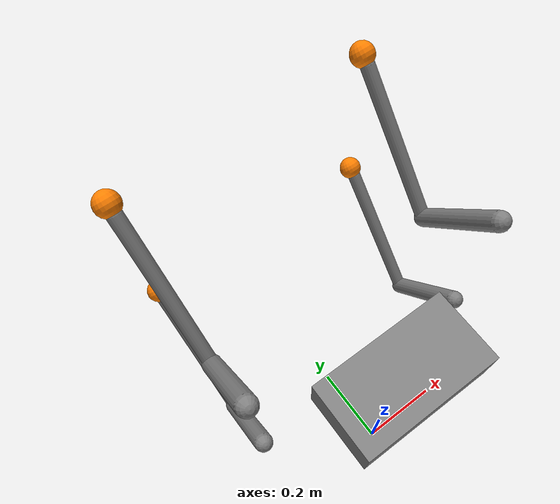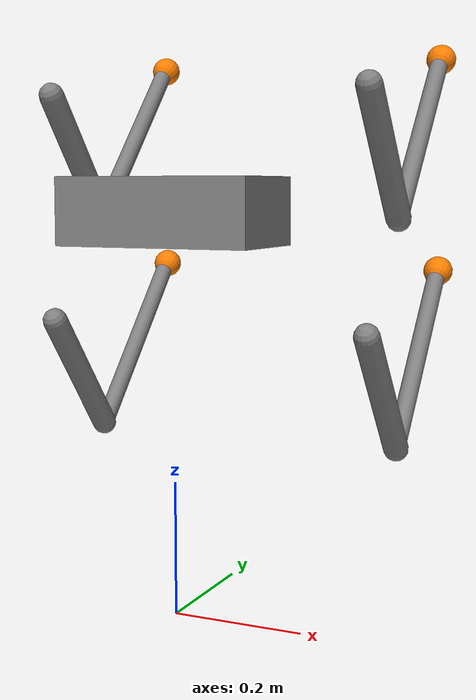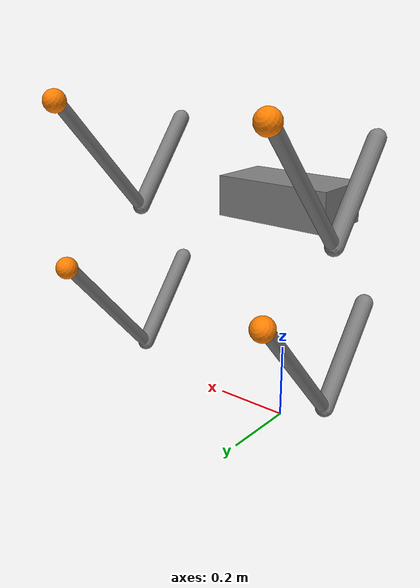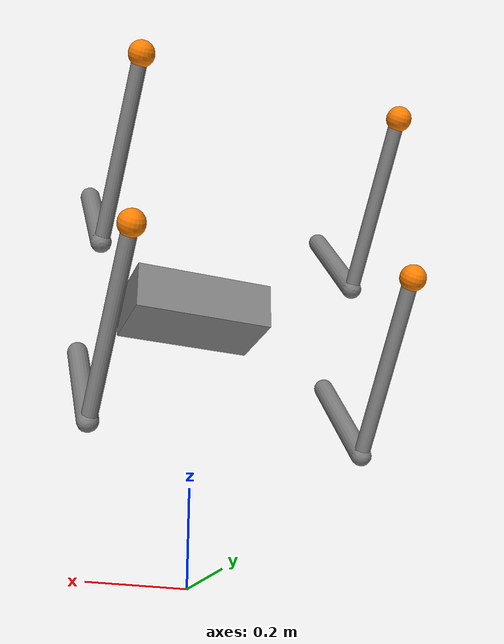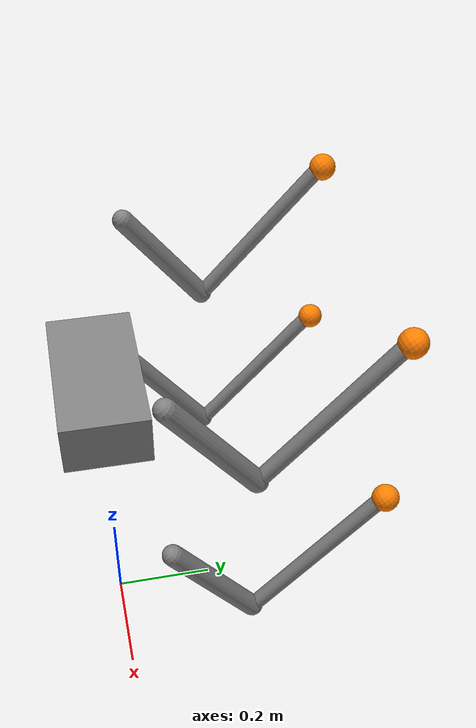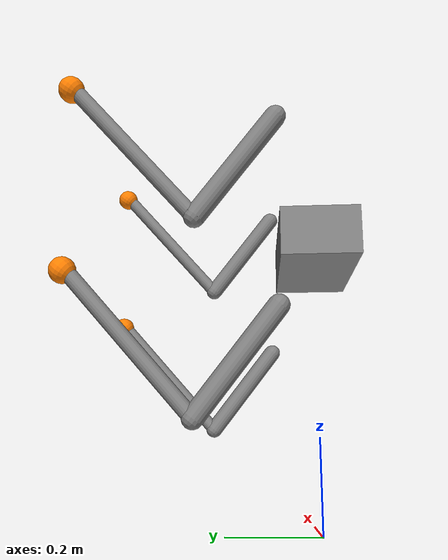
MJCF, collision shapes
<mujoco model="kutta">
  <compiler angle="radian" meshdir="meshes/" autolimits="true" eulerseq="xyz"/>

  <option iterations="1" ls_iterations="5" timestep="0.004" integrator="Euler">
    <flag eulerdamp="disable"/>
  </option>

  <default>
    <default class="kutta">
      <!-- This globally disables collisions for all parts except feet -->
      <geom condim="3" contype="0" conaffinity="0"/>
      <joint axis="0 0 1" armature="0.005" damping="0.5"/>
      <position forcerange="-1000 1000" inheritrange="1" kp="150"/>
      <default class="thigh">
        <joint range="-0.9 0.67" frictionloss="0.3"/>
      </default>
      <default class="calf">
        <joint range="-0.5 0.5" frictionloss="1.0"/>
        <position forcerange="-1000 1000"/>
      </default>
      <default class="visual">
        <geom type="mesh" contype="0" conaffinity="0" group="2" material="dark"/>
      </default>
      <default class="collision">
        <!-- These are disabled collision geometries (contype=0, conaffinity=0) -->
        <geom group="3" type="capsule" contype="0" conaffinity="0"/>
        <default class="trunk">
          <geom size="0.15 0.08 0.05" type="box" contype="0" conaffinity="0"/>
        </default>
        <default class="thigh_col_right">
          <geom size="0.02" fromto="0 0 0.055 0 0.245 0.055" type="capsule" contype="1" conaffinity="1" />
        </default>
        <default class="thigh_col_left">
          <geom size="0.02" fromto="0 0 -0.055 0 0.245 -0.055" type="capsule" contype="1" conaffinity="1" />
        </default>
        <default class="calf_col">
          <geom size="0.015" fromto="0 0 0 0 -0.065 0.33" type="capsule" contype="1" conaffinity="1" />
        </default>
        <default class="foot">
          <geom type="sphere" size="0.025" pos="0 -0.065 0.35" solimp="0.9 0.95 0.001" solref="0.004 1" contype="1" conaffinity="1" condim="3" friction="5 0.1 0.01" rgba="1 0.5 0 1" group="0"/>
        </default>
      </default>
    </default>
  </default>

  <asset>
    <material name="dark" rgba="0.2 0.2 0.2 1"/>
    <material name="light" rgba="0.776471 0.756863 0.737255 1"/>
    <material name="blue" rgba="0.792157 0.819608 0.933333 1"/>
    <mesh name="base_link" content_type="model/stl" file="base_link.STL"/>
    <mesh name="left_thigh" content_type="model/stl" file="FL_thigh.STL"/>
    <mesh name="left_calf" content_type="model/stl" file="FL_calf.STL"/>
    <mesh name="right_thigh" content_type="model/stl" file="FR_thigh.STL"/>
    <mesh name="right_calf" content_type="model/stl" file="FR_calf.STL"/>
  </asset>

  <worldbody>
    <body name="trunk" pos="0 0 0.6" quat="1 0 0 0" childclass="kutta">
      <camera name="track" pos="0.846 -1.3 0.316" xyaxes="0.866 0.500 0.000 -0.171 0.296 0.940" mode="trackcom"/>
      <camera name="top" pos="-1 0 1" xyaxes="0 -1 0 0.7 0 0.7" mode="trackcom"/>
      <camera name="side" pos="0 -1 .3" xyaxes="1 0 0 0 1 2" mode="trackcom"/>
      <camera name="back" pos="-1 0 .3" xyaxes="0 -1 0 1 0 2" mode="trackcom"/>
      <site name="head" pos="0.3 0 0" rgba="1 0 0 1" size="0.02" group="5"/>
      <inertial pos="0 0 0" mass="20.0" diaginertia="0.1 0.1 0.05"/>
      <freejoint/>

      <!-- Visual mesh for trunk with rotation to correct mesh orientation -->
      <geom class="visual" mesh="base_link" material="blue" />
      <!-- Collision geometry for trunk -->
      <geom class="trunk"/>

      <site name="imu" pos="0 0 0" group="5"/>

      <!-- Front Left Leg -->
      <body name="FL_thigh" pos="0.21 0.09 -0.18" quat="0.63 -0.31 -0.63 0.31"> <!--quat="0.525 -0.425 -0.525 0.425"> -->
        <inertial pos="-0.0008 0.03 -0.05" quat="0.4 0.4 -0.6 0.6" mass="1.55" diaginertia="0.00262 0.00260 0.00123"/>
        <joint class="thigh" name="FL_thigh_joint"/>
        <geom class="visual" mesh="left_thigh" material="light" />
        <geom class="thigh_col_left"/>
        <body name="FL_calf" pos="0 0.245452 -0.0544472" quat="0.707107 0 0.707107 0">
          <inertial pos="0.0 -0.033 0.166" quat="0.704 0.068 -0.068 0.704" mass="0.25" diaginertia="0.00085 0.00085 0.000017"/>
          <joint class="calf" name="FL_calf_joint" axis="-1 0 0"/>
          <geom class="visual" mesh="left_calf" material="blue" />
          <geom class="calf_col"/>
          <geom name="FL" class="foot"/>
          <site name="FL" pos="0 -0.33 0" type="sphere" size="0.03" group="5"/>
        </body>
      </body>

      <!-- Front Right Leg -->
      <body name="FR_thigh" pos="-0.21 0.09 -0.18" quat="0.63 -0.31 -0.63 0.31">
        <inertial pos="-0.0008 0.03 -0.05" quat="0.4 0.4 -0.6 0.6" mass="1.55" diaginertia="0.00262 0.00260 0.00123"/>
        <joint class="thigh" name="FR_thigh_joint"/>
        <geom class="visual" mesh="right_thigh" material="light" />
        <geom class="thigh_col_right"/>
        <body name="FR_calf" pos="0 0.245452 0.0544472" quat="0.707107 0 0.707107 0">
          <inertial pos="0.0 -0.033 0.166" quat="0.704 0.068 -0.068 0.704" mass="0.25" diaginertia="0.00085 0.00085 0.000017"/>
          <joint class="calf" name="FR_calf_joint" axis="-1 0 0"/>
          <geom class="visual" mesh="right_calf" material="blue" />
          <geom class="calf_col"/>
          <geom name="FR" class="foot"/>
          <site name="FR" pos="0 -0.33 0" type="sphere" size="0.025" group="5"/>
        </body>
      </body>

      <!-- Rear Left Leg -->
      <body name="RL_thigh" pos="0.21 0.09 0.18" quat="0.63 -0.31 -0.63 0.31">
        <inertial pos="-0.0008 0.03 -0.05" quat="0.4 0.4 -0.6 0.6" mass="1.55" diaginertia="0.00262 0.00260 0.00123"/>
        <joint class="thigh" name="RL_thigh_joint"/>
        <geom class="visual" mesh="left_thigh" material="light" />
        <geom class="thigh_col_left"/>
        <body name="RL_calf" pos="0 0.245452 -0.0544472" quat="0.707107 0 0.707107 0">
          <inertial pos="0.0 -0.033 0.166" quat="0.704 0.068 -0.068 0.704" mass="0.25" diaginertia="0.00085 0.00085 0.000017"/>
          <joint class="calf" name="RL_calf_joint" axis="-1 0 0"/>
          <geom class="visual" mesh="left_calf" material="blue" />
          <geom class="calf_col"/>
          <geom name="RL" class="foot"/>
          <site name="RL" pos="0 -0.33 0" type="sphere" size="0.025" group="5"/>
        </body>
      </body>

      <!-- Rear Right Leg -->
      <body name="RR_thigh" pos="-0.21 0.09 0.18" quat="0.63 -0.31 -0.63 0.31">
        <inertial pos="-0.0008 0.03 -0.05" quat="0.4 0.4 -0.6 0.6" mass="1.55" diaginertia="0.00262 0.00260 0.00123"/>
        <joint class="thigh" name="RR_thigh_joint"/>
        <geom class="visual" mesh="right_thigh" material="light" />
        <geom class="thigh_col_right"/>
        <body name="RR_calf" pos="-0 0.245452 0.0544472" quat="0.707107 0 0.707107 0">
          <inertial pos="0.0 -0.033 -0.166" quat="0.704 -0.068 0.068 0.704" mass="0.25" diaginertia="0.00085 0.00085 0.000017"/>
          <joint class="calf" name="RR_calf_joint" axis="-1 0 0"/>
          <geom class="visual" mesh="right_calf" material="blue" />
          <geom class="calf_col"/>
          <geom name="RR" class="foot"/>
          <site name="RR" pos="0 -0.33 0" type="sphere" size="0.025" group="5"/>
        </body>
      </body>
    </body>
  </worldbody>

  <actuator>
    <position class="thigh" name="FL_thigh" joint="FL_thigh_joint" gear="1" kp="150" kv="0.5"/>
    <position class="calf" name="FL_calf" joint="FL_calf_joint" gear="1" kp="150" kv="0.5"/>
    <position class="thigh" name="FR_thigh" joint="FR_thigh_joint" gear="1" kp="150" kv="0.5"/>
    <position class="calf" name="FR_calf" joint="FR_calf_joint" gear="1" kp="150" kv="0.5"/>
    <position class="thigh" name="RL_thigh" joint="RL_thigh_joint" gear="1" kp="150" kv="0.5"/>
    <position class="calf" name="RL_calf" joint="RL_calf_joint" gear="1" kp="150" kv="0.5"/>
    <position class="thigh" name="RR_thigh" joint="RR_thigh_joint" gear="1" kp="150" kv="0.5"/>
    <position class="calf" name="RR_calf" joint="RR_calf_joint" gear="1" kp="150" kv="0.5"/>
  </actuator>

  <sensor>
    <gyro site="imu" name="gyro"/>
    <velocimeter site="imu" name="local_linvel"/>
    <accelerometer site="imu" name="accelerometer"/>
    <framepos objtype="site" objname="imu" name="position"/>
    <framezaxis objtype="site" objname="imu" name="upvector"/>
    <framexaxis objtype="site" objname="imu" name="forwardvector"/>
    <framelinvel objtype="site" objname="imu" name="global_linvel"/>
    <frameangvel objtype="site" objname="imu" name="global_angvel"/>
    <framequat objtype="site" objname="imu" name="orientation"/>
    <framelinvel objtype="site" objname="FL" name="FL_global_linvel"/>
    <framelinvel objtype="site" objname="FR" name="FR_global_linvel"/>
    <framelinvel objtype="site" objname="RL" name="RL_global_linvel"/>
    <framelinvel objtype="site" objname="RR" name="RR_global_linvel"/>
    <framepos objtype="site" objname="FL" name="FL_pos" reftype="site" refname="imu"/>
    <framepos objtype="site" objname="FR" name="FR_pos" reftype="site" refname="imu"/>
    <framepos objtype="site" objname="RL" name="RL_pos" reftype="site" refname="imu"/>
    <framepos objtype="site" objname="RR" name="RR_pos" reftype="site" refname="imu"/>
  </sensor>
</mujoco>
